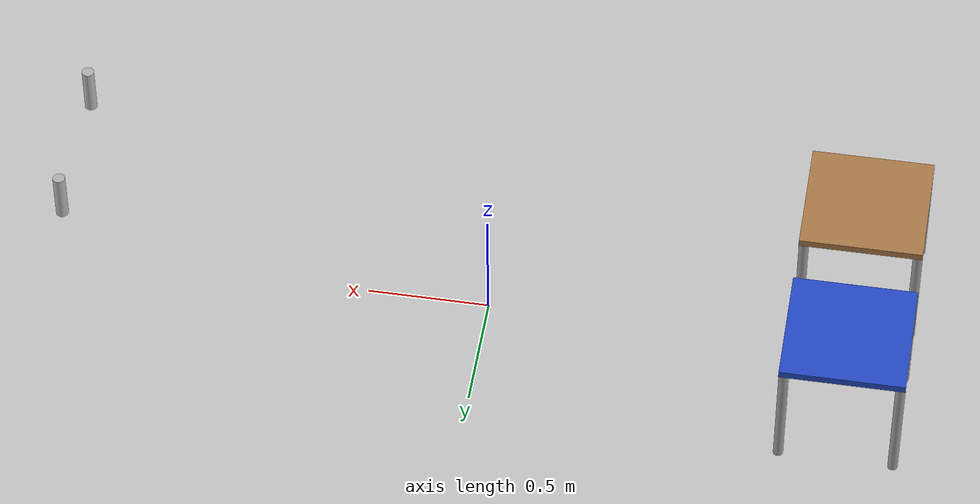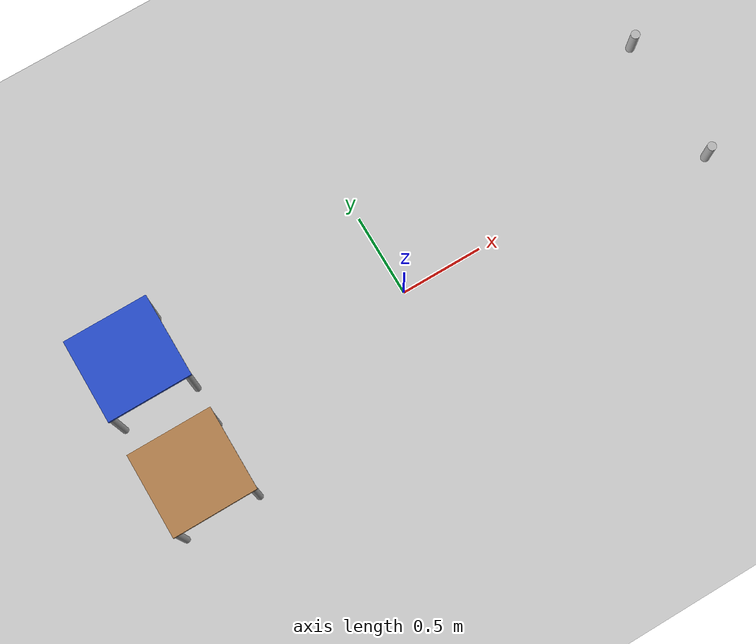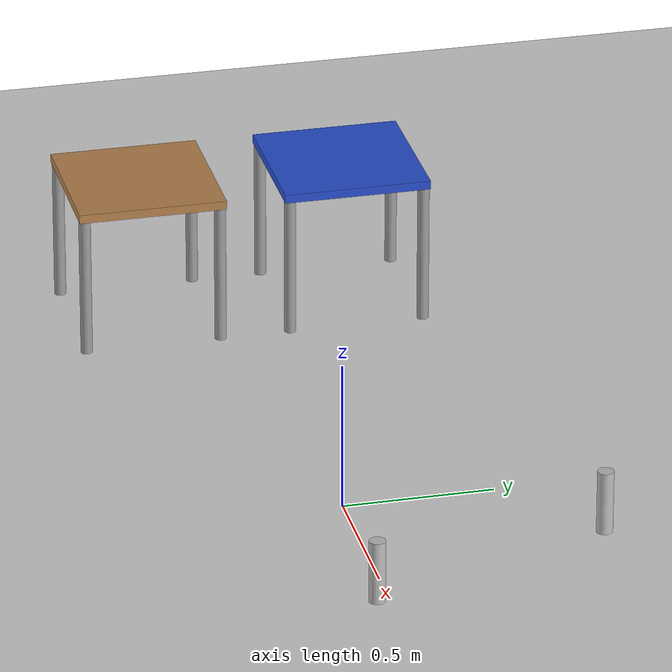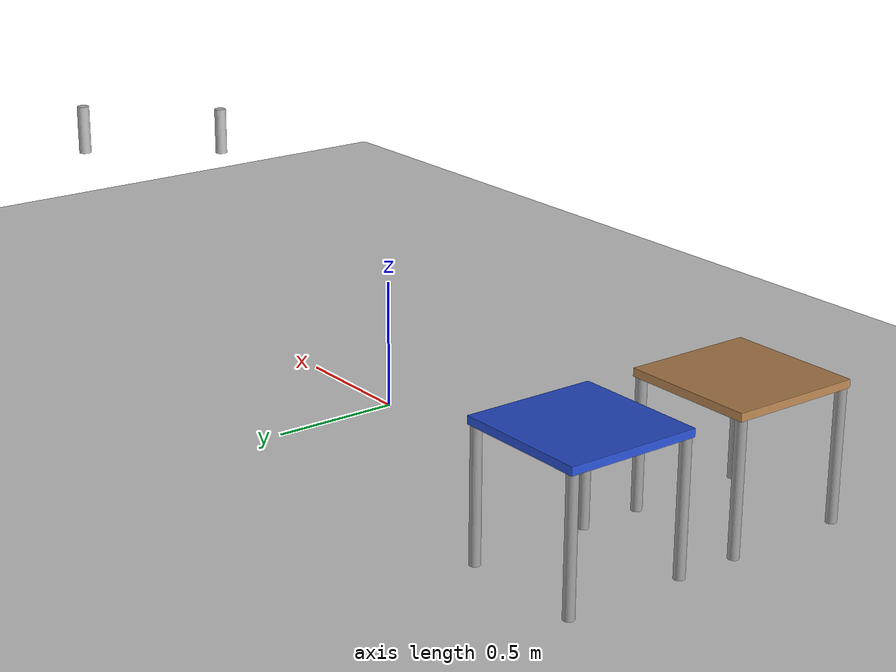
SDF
<sdf version="1.4">
 <world name="default">
  <physics type="ode">
   <gravity>0 0 -9.81</gravity>
   <ode>
    <solver><type>quick</type><iters>20</iters><sor>1.0</sor></solver>
    <constraints>
     <cfm>0.0</cfm>
     <erp>0.2</erp>
     <contact_max_correcting_vel>100.0</contact_max_correcting_vel>
     <contact_surface_layer>0.0</contact_surface_layer>
    </constraints>
   </ode>
   <real_time_update_rate>1000</real_time_update_rate>
   <max_step_size>0.001</max_step_size>
  </physics>
  <include><uri>model://sun</uri></include>
  <include><uri>model://ground_plane</uri></include>
  <include><uri>model://table_wood</uri><name>wood_table</name><pose>-1.5 -0.35 0 0 0 0</pose></include>
  <include><uri>model://table_blue</uri><name>blue_table</name><pose>-1.5 0.35 0 0 0 0</pose></include>
  <include><uri>model://pringles</uri><name>pringles</name><pose>1.7 -0.3 0.7 0 0 2.3</pose></include>
  <include><uri>model://pringles2</uri><name>pringles2</name><pose>1.65 0.4 0.7 0 0 1.57</pose></include>
 </world>
</sdf>

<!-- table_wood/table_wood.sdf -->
<sdf version='1.4'>
<model name='table_wood'>
      <static>1</static>
      <link name='link'>
        <collision name='surface'>
          <pose>0.000000 0.000000 0.500000 0.000000 0.000000 0.000000</pose>
          <geometry>
            <box>
              <size>0.500000 0.500000 0.030000</size>
            </box>
          </geometry>
          <surface>
            <bounce/>
            <friction>
              <ode/>
            </friction>
            <contact>
              <ode/>
            </contact>
          </surface>
        </collision>
        <visual name='visual1'>
          <pose>0.000000 0.000000 0.500000 0.000000 0.000000 0.000000</pose>
          <geometry>
            <box>
              <size>0.500000 0.500000 0.030000</size>
            </box>
          </geometry>
          <material>
            <script>
              <uri>file://media/materials/scripts/gazebo.material</uri>
              <name>Gazebo/Wood</name>
            </script>
          </material>
        </visual>
        <collision name='front_left_leg'>
          <pose>0.230000 0.230000 0.250000 0.000000 0.000000 0.000000</pose>
          <geometry>
            <cylinder>
              <radius>0.020000</radius>
              <length>0.500000</length>
            </cylinder>
          </geometry>
          <surface>
            <bounce/>
            <friction>
              <ode/>
            </friction>
            <contact>
              <ode/>
            </contact>
          </surface>
        </collision>
        <visual name='front_left_leg'>
          <pose>0.230000 0.230000 0.250000 0.000000 0.000000 0.000000</pose>
          <geometry>
            <cylinder>
              <radius>0.020000</radius>
              <length>0.500000</length>
            </cylinder>
          </geometry>
          <material>
            <script>
              <uri>file://media/materials/scripts/gazebo.material</uri>
              <name>Gazebo/Grey</name>
            </script>
          </material>
        </visual>
        <collision name='front_right_leg'>
          <pose>0.230000 -0.230000 0.250000 0.000000 0.000000 0.000000</pose>
          <geometry>
            <cylinder>
              <radius>0.020000</radius>
              <length>0.500000</length>
            </cylinder>
          </geometry>
          <surface>
            <bounce/>
            <friction>
              <ode/>
            </friction>
            <contact>
              <ode/>
            </contact>
          </surface>
        </collision>
        <visual name='front_right_leg'>
          <pose>0.230000 -0.230000 0.250000 0.000000 0.000000 0.000000</pose>
          <geometry>
            <cylinder>
              <radius>0.020000</radius>
              <length>0.500000</length>
            </cylinder>
          </geometry>
          <material>
            <script>
              <uri>file://media/materials/scripts/gazebo.material</uri>
              <name>Gazebo/Grey</name>
            </script>
          </material>
        </visual>
        <collision name='back_right_leg'>
          <pose>-0.230000 -0.230000 0.250000 0.000000 0.000000 0.000000</pose>
          <geometry>
            <cylinder>
              <radius>0.020000</radius>
              <length>0.500000</length>
            </cylinder>
          </geometry>
          <surface>
            <bounce/>
            <friction>
              <ode/>
            </friction>
            <contact>
              <ode/>
            </contact>
          </surface>
        </collision>
        <visual name='back_right_leg'>
          <pose>-0.230000 -0.230000 0.250000 0.000000 0.000000 0.000000</pose>
          <geometry>
            <cylinder>
              <radius>0.020000</radius>
              <length>0.500000</length>
            </cylinder>
          </geometry>
          <material>
            <script>
              <uri>file://media/materials/scripts/gazebo.material</uri>
              <name>Gazebo/Grey</name>
            </script>
          </material>
        </visual>
        <collision name='back_left_leg'>
          <pose>-0.230000 0.230000 0.250000 0.000000 0.000000 0.000000</pose>
          <geometry>
            <cylinder>
              <radius>0.020000</radius>
              <length>0.500000</length>
            </cylinder>
          </geometry>
          <surface>
            <bounce/>
            <friction>
              <ode/>
            </friction>
            <contact>
              <ode/>
            </contact>
          </surface>
        </collision>
        <visual name='back_left_leg'>
          <pose>-0.230000 0.230000 0.250000 0.000000 0.000000 0.000000</pose>
          <geometry>
            <cylinder>
              <radius>0.020000</radius>
              <length>0.500000</length>
            </cylinder>
          </geometry>
          <material>
            <script>
              <uri>file://media/materials/scripts/gazebo.material</uri>
              <name>Gazebo/Grey</name>
            </script>
          </material>
        </visual>
        <velocity_decay>
          <linear>0.000000</linear>
          <angular>0.000000</angular>
        </velocity_decay>
        <self_collide>0</self_collide>
        <kinematic>0</kinematic>
        <gravity>1</gravity>
      </link>
    </model>
</sdf>

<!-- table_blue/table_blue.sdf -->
<sdf version='1.4'>
<model name='table_blue'>
      <static>1</static>
      <link name='link'>
        <collision name='surface'>
          <pose>0.000000 0.000000 0.500000 0.000000 0.000000 0.000000</pose>
          <geometry>
            <box>
              <size>0.500000 0.500000 0.030000</size>
            </box>
          </geometry>
          <surface>
            <bounce/>
            <friction>
              <ode/>
            </friction>
            <contact>
              <ode/>
            </contact>
          </surface>
        </collision>
        <visual name='visual1'>
          <pose>0.000000 0.000000 0.500000 0.000000 0.000000 0.000000</pose>
          <geometry>
            <box>
              <size>0.500000 0.500000 0.030000</size>
            </box>
          </geometry>
          <material>
            <script>
              <uri>file://media/materials/scripts/gazebo.material</uri>
              <name>Gazebo/Blue</name>
            </script>
          </material>
        </visual>
        <collision name='front_left_leg'>
          <pose>0.230000 0.230000 0.250000 0.000000 0.000000 0.000000</pose>
          <geometry>
            <cylinder>
              <radius>0.020000</radius>
              <length>0.500000</length>
            </cylinder>
          </geometry>
          <surface>
            <bounce/>
            <friction>
              <ode/>
            </friction>
            <contact>
              <ode/>
            </contact>
          </surface>
        </collision>
        <visual name='front_left_leg'>
          <pose>0.230000 0.230000 0.250000 0.000000 0.000000 0.000000</pose>
          <geometry>
            <cylinder>
              <radius>0.020000</radius>
              <length>0.500000</length>
            </cylinder>
          </geometry>
          <material>
            <script>
              <uri>file://media/materials/scripts/gazebo.material</uri>
              <name>Gazebo/Grey</name>
            </script>
          </material>
        </visual>
        <collision name='front_right_leg'>
          <pose>0.230000 -0.230000 0.250000 0.000000 0.000000 0.000000</pose>
          <geometry>
            <cylinder>
              <radius>0.020000</radius>
              <length>0.500000</length>
            </cylinder>
          </geometry>
          <surface>
            <bounce/>
            <friction>
              <ode/>
            </friction>
            <contact>
              <ode/>
            </contact>
          </surface>
        </collision>
        <visual name='front_right_leg'>
          <pose>0.230000 -0.230000 0.250000 0.000000 0.000000 0.000000</pose>
          <geometry>
            <cylinder>
              <radius>0.020000</radius>
              <length>0.500000</length>
            </cylinder>
          </geometry>
          <material>
            <script>
              <uri>file://media/materials/scripts/gazebo.material</uri>
              <name>Gazebo/Grey</name>
            </script>
          </material>
        </visual>
        <collision name='back_right_leg'>
          <pose>-0.230000 -0.230000 0.250000 0.000000 0.000000 0.000000</pose>
          <geometry>
            <cylinder>
              <radius>0.020000</radius>
              <length>0.500000</length>
            </cylinder>
          </geometry>
          <surface>
            <bounce/>
            <friction>
              <ode/>
            </friction>
            <contact>
              <ode/>
            </contact>
          </surface>
        </collision>
        <visual name='back_right_leg'>
          <pose>-0.230000 -0.230000 0.250000 0.000000 0.000000 0.000000</pose>
          <geometry>
            <cylinder>
              <radius>0.020000</radius>
              <length>0.500000</length>
            </cylinder>
          </geometry>
          <material>
            <script>
              <uri>file://media/materials/scripts/gazebo.material</uri>
              <name>Gazebo/Grey</name>
            </script>
          </material>
        </visual>
        <collision name='back_left_leg'>
          <pose>-0.230000 0.230000 0.250000 0.000000 0.000000 0.000000</pose>
          <geometry>
            <cylinder>
              <radius>0.020000</radius>
              <length>0.500000</length>
            </cylinder>
          </geometry>
          <surface>
            <bounce/>
            <friction>
              <ode/>
            </friction>
            <contact>
              <ode/>
            </contact>
          </surface>
        </collision>
        <visual name='back_left_leg'>
          <pose>-0.230000 0.230000 0.250000 0.000000 0.000000 0.000000</pose>
          <geometry>
            <cylinder>
              <radius>0.020000</radius>
              <length>0.500000</length>
            </cylinder>
          </geometry>
          <material>
            <script>
              <uri>file://media/materials/scripts/gazebo.material</uri>
              <name>Gazebo/Grey</name>
            </script>
          </material>
        </visual>
        <velocity_decay>
          <linear>0.000000</linear>
          <angular>0.000000</angular>
        </velocity_decay>
        <self_collide>0</self_collide>
        <kinematic>0</kinematic>
        <gravity>1</gravity>
      </link>
    </model>
</sdf>

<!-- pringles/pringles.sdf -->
<sdf version='1.4'>
  <model name="pringles">
      <static>0</static>
      <link name='link'>
        <inertial>
          <mass>0.01</mass>
          <inertia>
            <ixx>0.000000</ixx>
            <ixy>0.000000</ixy>
            <ixz>0.000000</ixz>
            <iyy>0.000000</iyy>
            <iyz>0.000000</iyz>
            <izz>0.000000</izz>
          </inertia>
        </inertial>
        <collision name='collision'>
          <geometry>
            <cylinder>
              <radius>0.025</radius>
              <length>0.2</length>
            </cylinder>
          </geometry>
          <surface>
            <bounce/>
            <friction>
              <ode>
                <mu>100.0</mu>
                <mu2>100.0</mu2>
              </ode>
            </friction>
            <contact>
              <ode/>
            </contact>
          </surface>
        </collision>
        <visual name='visual'>
          <geometry>
            <cylinder>
              <radius>0.025</radius>
              <length>0.2</length>
            </cylinder>
          </geometry>
          <material>
            <script>
	      <uri>model://pringles/material/scripts</uri>
	      <uri>model://pringles/material/textures</uri>
              <name>Custom/pringles</name>
            </script>
          </material>
        </visual>
        <velocity_decay>
          <linear>0.000000</linear>
          <angular>0.000000</angular>
        </velocity_decay>
        <self_collide>0</self_collide>
        <kinematic>0</kinematic>
        <gravity>1</gravity>
      </link>
  </model>
</sdf>

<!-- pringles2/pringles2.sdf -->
<sdf version="1.4">
  <model name="pringles2">
    <static>0</static>
    <link name="link">
      <inertial>
        <mass>0.01</mass>
        <inertia>
          <ixx>0.000000</ixx>
          <ixy>0.000000</ixy>
          <ixz>0.000000</ixz>
          <iyy>0.000000</iyy>
          <iyz>0.000000</iyz>
          <izz>0.000000</izz>
        </inertia>
      </inertial>
      <collision name="collision">
        <pose>0 0 0.12 3.1416 0 0</pose>
        <geometry>
          <cylinder>
            <radius>0.025</radius>
            <length>0.2</length>
          </cylinder>
        </geometry>
        <surface>
          <bounce />
          <friction>
            <ode>
              <mu>100.0</mu>
              <mu2>100.0</mu2>
            </ode>
          </friction>
          <contact>
            <ode />
          </contact>
        </surface>
      </collision>
      <visual name="visual">
        <pose>0 0 0.12 3.1416 0 0</pose>
        <geometry>
          <cylinder>
            <radius>0.025</radius>
            <length>0.2</length>
          </cylinder>
        </geometry>
        <material>
          <script>
	      <uri>model://pringles2/material/scripts</uri>
	      <uri>model://pringles2/material/textures</uri>
              <name>Custom/pringles2</name>
          </script>
        </material>
      </visual>
      <velocity_decay>
        <linear>0.000000</linear>
        <angular>0.000000</angular>
      </velocity_decay>
      <self_collide>0</self_collide>
      <kinematic>0</kinematic>
      <gravity>1</gravity>
    </link>
  </model>
</sdf>
